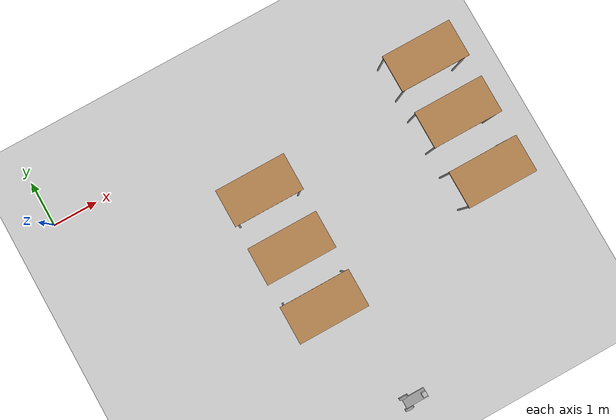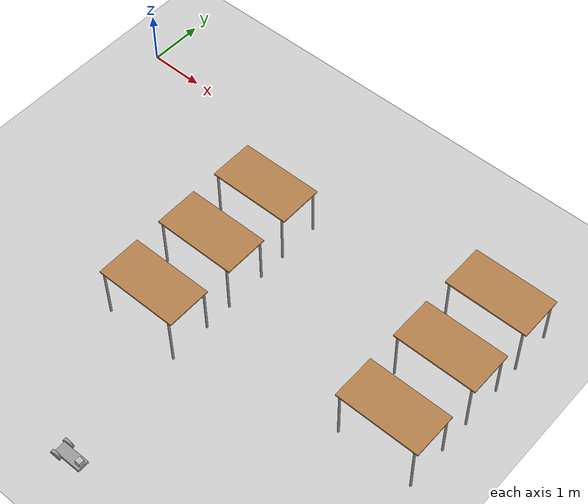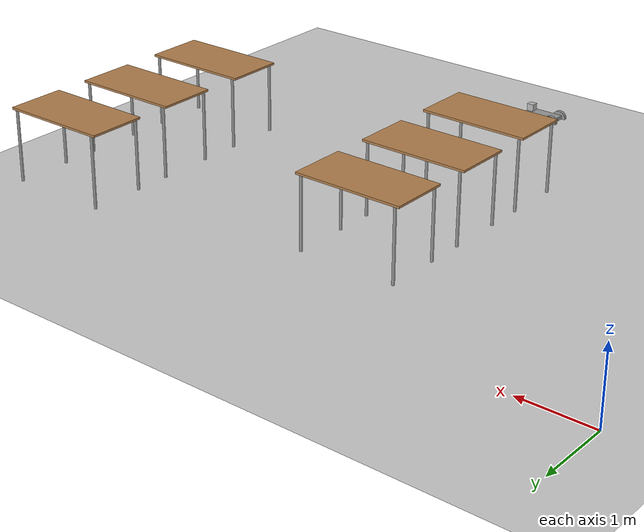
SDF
<sdf version="1.6">
 <world name="default">
  <model name="ground_plane">
   <static>1</static>
   <link name="link">
    <collision name="collision">
     <geometry><plane><normal>0 0 1</normal><size>100 100</size></plane></geometry>
     <surface>
      <contact><collide_bitmask>65535</collide_bitmask></contact>
      <friction><ode><mu>100</mu><mu2>50</mu2></ode></friction>
     </surface>
    </collision>
    <visual name="visual">
     <cast_shadows>0</cast_shadows>
     <geometry><plane><normal>0 0 1</normal><size>100 100</size></plane></geometry>
     <material>
      <script><uri>file://media/materials/scripts/gazebo.material</uri><name>Gazebo/Grey</name></script>
     </material>
    </visual>
   </link>
  </model>
  <model name="table">
   <static>1</static>
   <link name="link">
    <collision name="surface">
     <pose>0 0 1 0 -0 0</pose>
     <geometry><box><size>1.5 0.8 0.03</size></box></geometry>
     <surface><friction><ode><mu>0.6</mu><mu2>0.6</mu2></ode></friction></surface>
    </collision>
    <visual name="visual1">
     <pose>0 0 1 0 -0 0</pose>
     <geometry><box><size>1.5 0.8 0.03</size></box></geometry>
     <material>
      <script><uri>file://media/materials/scripts/gazebo.material</uri><name>Gazebo/Wood</name></script>
     </material>
    </visual>
    <collision name="front_left_leg">
     <pose>0.68 0.38 0.5 0 -0 0</pose>
     <geometry><cylinder><radius>0.02</radius><length>1</length></cylinder></geometry>
    </collision>
    <visual name="front_left_leg">
     <pose>0.68 0.38 0.5 0 -0 0</pose>
     <geometry><cylinder><radius>0.02</radius><length>1</length></cylinder></geometry>
     <material>
      <script><uri>file://media/materials/scripts/gazebo.material</uri><name>Gazebo/Grey</name></script>
     </material>
    </visual>
    <collision name="front_right_leg">
     <pose>0.68 -0.38 0.5 0 -0 0</pose>
     <geometry><cylinder><radius>0.02</radius><length>1</length></cylinder></geometry>
    </collision>
    <visual name="front_right_leg">
     <pose>0.68 -0.38 0.5 0 -0 0</pose>
     <geometry><cylinder><radius>0.02</radius><length>1</length></cylinder></geometry>
     <material>
      <script><uri>file://media/materials/scripts/gazebo.material</uri><name>Gazebo/Grey</name></script>
     </material>
    </visual>
    <collision name="back_right_leg">
     <pose>-0.68 -0.38 0.5 0 -0 0</pose>
     <geometry><cylinder><radius>0.02</radius><length>1</length></cylinder></geometry>
    </collision>
    <visual name="back_right_leg">
     <pose>-0.68 -0.38 0.5 0 -0 0</pose>
     <geometry><cylinder><radius>0.02</radius><length>1</length></cylinder></geometry>
     <material>
      <script><uri>file://media/materials/scripts/gazebo.material</uri><name>Gazebo/Grey</name></script>
     </material>
    </visual>
    <collision name="back_left_leg">
     <pose>-0.68 0.38 0.5 0 -0 0</pose>
     <geometry><cylinder><radius>0.02</radius><length>1</length></cylinder></geometry>
    </collision>
    <visual name="back_left_leg">
     <pose>-0.68 0.38 0.5 0 -0 0</pose>
     <geometry><cylinder><radius>0.02</radius><length>1</length></cylinder></geometry>
     <material>
      <script><uri>file://media/materials/scripts/gazebo.material</uri><name>Gazebo/Grey</name></script>
     </material>
    </visual>
   </link>
   <pose>4.02135 -1.52151 0 0 -0 0</pose>
  </model>
  <model name="table_clone">
   <static>1</static>
   <link name="link">
    <collision name="surface">
     <pose>0 0 1 0 -0 0</pose>
     <geometry><box><size>1.5 0.8 0.03</size></box></geometry>
     <surface><friction><ode><mu>0.6</mu><mu2>0.6</mu2></ode></friction></surface>
    </collision>
    <visual name="visual1">
     <pose>0 0 1 0 -0 0</pose>
     <geometry><box><size>1.5 0.8 0.03</size></box></geometry>
     <material>
      <script><uri>file://media/materials/scripts/gazebo.material</uri><name>Gazebo/Wood</name></script>
     </material>
    </visual>
    <collision name="front_left_leg">
     <pose>0.68 0.38 0.5 0 -0 0</pose>
     <geometry><cylinder><radius>0.02</radius><length>1</length></cylinder></geometry>
    </collision>
    <visual name="front_left_leg">
     <pose>0.68 0.38 0.5 0 -0 0</pose>
     <geometry><cylinder><radius>0.02</radius><length>1</length></cylinder></geometry>
     <material>
      <script><uri>file://media/materials/scripts/gazebo.material</uri><name>Gazebo/Grey</name></script>
     </material>
    </visual>
    <collision name="front_right_leg">
     <pose>0.68 -0.38 0.5 0 -0 0</pose>
     <geometry><cylinder><radius>0.02</radius><length>1</length></cylinder></geometry>
    </collision>
    <visual name="front_right_leg">
     <pose>0.68 -0.38 0.5 0 -0 0</pose>
     <geometry><cylinder><radius>0.02</radius><length>1</length></cylinder></geometry>
     <material>
      <script><uri>file://media/materials/scripts/gazebo.material</uri><name>Gazebo/Grey</name></script>
     </material>
    </visual>
    <collision name="back_right_leg">
     <pose>-0.68 -0.38 0.5 0 -0 0</pose>
     <geometry><cylinder><radius>0.02</radius><length>1</length></cylinder></geometry>
    </collision>
    <visual name="back_right_leg">
     <pose>-0.68 -0.38 0.5 0 -0 0</pose>
     <geometry><cylinder><radius>0.02</radius><length>1</length></cylinder></geometry>
     <material>
      <script><uri>file://media/materials/scripts/gazebo.material</uri><name>Gazebo/Grey</name></script>
     </material>
    </visual>
    <collision name="back_left_leg">
     <pose>-0.68 0.38 0.5 0 -0 0</pose>
     <geometry><cylinder><radius>0.02</radius><length>1</length></cylinder></geometry>
    </collision>
    <visual name="back_left_leg">
     <pose>-0.68 0.38 0.5 0 -0 0</pose>
     <geometry><cylinder><radius>0.02</radius><length>1</length></cylinder></geometry>
     <material>
      <script><uri>file://media/materials/scripts/gazebo.material</uri><name>Gazebo/Grey</name></script>
     </material>
    </visual>
   </link>
   <pose>4.02135 -2.7982 0 0 -0 0</pose>
  </model>
  <model name="table_clone_0">
   <static>1</static>
   <link name="link">
    <collision name="surface">
     <pose>0 0 1 0 -0 0</pose>
     <geometry><box><size>1.5 0.8 0.03</size></box></geometry>
     <surface><friction><ode><mu>0.6</mu><mu2>0.6</mu2></ode></friction></surface>
    </collision>
    <visual name="visual1">
     <pose>0 0 1 0 -0 0</pose>
     <geometry><box><size>1.5 0.8 0.03</size></box></geometry>
     <material>
      <script><uri>file://media/materials/scripts/gazebo.material</uri><name>Gazebo/Wood</name></script>
     </material>
    </visual>
    <collision name="front_left_leg">
     <pose>0.68 0.38 0.5 0 -0 0</pose>
     <geometry><cylinder><radius>0.02</radius><length>1</length></cylinder></geometry>
    </collision>
    <visual name="front_left_leg">
     <pose>0.68 0.38 0.5 0 -0 0</pose>
     <geometry><cylinder><radius>0.02</radius><length>1</length></cylinder></geometry>
     <material>
      <script><uri>file://media/materials/scripts/gazebo.material</uri><name>Gazebo/Grey</name></script>
     </material>
    </visual>
    <collision name="front_right_leg">
     <pose>0.68 -0.38 0.5 0 -0 0</pose>
     <geometry><cylinder><radius>0.02</radius><length>1</length></cylinder></geometry>
    </collision>
    <visual name="front_right_leg">
     <pose>0.68 -0.38 0.5 0 -0 0</pose>
     <geometry><cylinder><radius>0.02</radius><length>1</length></cylinder></geometry>
     <material>
      <script><uri>file://media/materials/scripts/gazebo.material</uri><name>Gazebo/Grey</name></script>
     </material>
    </visual>
    <collision name="back_right_leg">
     <pose>-0.68 -0.38 0.5 0 -0 0</pose>
     <geometry><cylinder><radius>0.02</radius><length>1</length></cylinder></geometry>
    </collision>
    <visual name="back_right_leg">
     <pose>-0.68 -0.38 0.5 0 -0 0</pose>
     <geometry><cylinder><radius>0.02</radius><length>1</length></cylinder></geometry>
     <material>
      <script><uri>file://media/materials/scripts/gazebo.material</uri><name>Gazebo/Grey</name></script>
     </material>
    </visual>
    <collision name="back_left_leg">
     <pose>-0.68 0.38 0.5 0 -0 0</pose>
     <geometry><cylinder><radius>0.02</radius><length>1</length></cylinder></geometry>
    </collision>
    <visual name="back_left_leg">
     <pose>-0.68 0.38 0.5 0 -0 0</pose>
     <geometry><cylinder><radius>0.02</radius><length>1</length></cylinder></geometry>
     <material>
      <script><uri>file://media/materials/scripts/gazebo.material</uri><name>Gazebo/Grey</name></script>
     </material>
    </visual>
   </link>
   <pose>4.02135 -4.0721 0 0 -0 0</pose>
  </model>
  <model name="table_clone_1">
   <static>1</static>
   <link name="link">
    <collision name="surface">
     <pose>0 0 1 0 -0 0</pose>
     <geometry><box><size>1.5 0.8 0.03</size></box></geometry>
     <surface><friction><ode><mu>0.6</mu><mu2>0.6</mu2></ode></friction></surface>
    </collision>
    <visual name="visual1">
     <pose>0 0 1 0 -0 0</pose>
     <geometry><box><size>1.5 0.8 0.03</size></box></geometry>
     <material>
      <script><uri>file://media/materials/scripts/gazebo.material</uri><name>Gazebo/Wood</name></script>
     </material>
    </visual>
    <collision name="front_left_leg">
     <pose>0.68 0.38 0.5 0 -0 0</pose>
     <geometry><cylinder><radius>0.02</radius><length>1</length></cylinder></geometry>
    </collision>
    <visual name="front_left_leg">
     <pose>0.68 0.38 0.5 0 -0 0</pose>
     <geometry><cylinder><radius>0.02</radius><length>1</length></cylinder></geometry>
     <material>
      <script><uri>file://media/materials/scripts/gazebo.material</uri><name>Gazebo/Grey</name></script>
     </material>
    </visual>
    <collision name="front_right_leg">
     <pose>0.68 -0.38 0.5 0 -0 0</pose>
     <geometry><cylinder><radius>0.02</radius><length>1</length></cylinder></geometry>
    </collision>
    <visual name="front_right_leg">
     <pose>0.68 -0.38 0.5 0 -0 0</pose>
     <geometry><cylinder><radius>0.02</radius><length>1</length></cylinder></geometry>
     <material>
      <script><uri>file://media/materials/scripts/gazebo.material</uri><name>Gazebo/Grey</name></script>
     </material>
    </visual>
    <collision name="back_right_leg">
     <pose>-0.68 -0.38 0.5 0 -0 0</pose>
     <geometry><cylinder><radius>0.02</radius><length>1</length></cylinder></geometry>
    </collision>
    <visual name="back_right_leg">
     <pose>-0.68 -0.38 0.5 0 -0 0</pose>
     <geometry><cylinder><radius>0.02</radius><length>1</length></cylinder></geometry>
     <material>
      <script><uri>file://media/materials/scripts/gazebo.material</uri><name>Gazebo/Grey</name></script>
     </material>
    </visual>
    <collision name="back_left_leg">
     <pose>-0.68 0.38 0.5 0 -0 0</pose>
     <geometry><cylinder><radius>0.02</radius><length>1</length></cylinder></geometry>
    </collision>
    <visual name="back_left_leg">
     <pose>-0.68 0.38 0.5 0 -0 0</pose>
     <geometry><cylinder><radius>0.02</radius><length>1</length></cylinder></geometry>
     <material>
      <script><uri>file://media/materials/scripts/gazebo.material</uri><name>Gazebo/Grey</name></script>
     </material>
    </visual>
   </link>
   <pose>8.1253 -0.794744 0 0 -0 0</pose>
  </model>
  <model name="table_clone_2">
   <static>1</static>
   <link name="link">
    <collision name="surface">
     <pose>0 0 1 0 -0 0</pose>
     <geometry><box><size>1.5 0.8 0.03</size></box></geometry>
     <surface><friction><ode><mu>0.6</mu><mu2>0.6</mu2></ode></friction></surface>
    </collision>
    <visual name="visual1">
     <pose>0 0 1 0 -0 0</pose>
     <geometry><box><size>1.5 0.8 0.03</size></box></geometry>
     <material>
      <script><uri>file://media/materials/scripts/gazebo.material</uri><name>Gazebo/Wood</name></script>
     </material>
    </visual>
    <collision name="front_left_leg">
     <pose>0.68 0.38 0.5 0 -0 0</pose>
     <geometry><cylinder><radius>0.02</radius><length>1</length></cylinder></geometry>
    </collision>
    <visual name="front_left_leg">
     <pose>0.68 0.38 0.5 0 -0 0</pose>
     <geometry><cylinder><radius>0.02</radius><length>1</length></cylinder></geometry>
     <material>
      <script><uri>file://media/materials/scripts/gazebo.material</uri><name>Gazebo/Grey</name></script>
     </material>
    </visual>
    <collision name="front_right_leg">
     <pose>0.68 -0.38 0.5 0 -0 0</pose>
     <geometry><cylinder><radius>0.02</radius><length>1</length></cylinder></geometry>
    </collision>
    <visual name="front_right_leg">
     <pose>0.68 -0.38 0.5 0 -0 0</pose>
     <geometry><cylinder><radius>0.02</radius><length>1</length></cylinder></geometry>
     <material>
      <script><uri>file://media/materials/scripts/gazebo.material</uri><name>Gazebo/Grey</name></script>
     </material>
    </visual>
    <collision name="back_right_leg">
     <pose>-0.68 -0.38 0.5 0 -0 0</pose>
     <geometry><cylinder><radius>0.02</radius><length>1</length></cylinder></geometry>
    </collision>
    <visual name="back_right_leg">
     <pose>-0.68 -0.38 0.5 0 -0 0</pose>
     <geometry><cylinder><radius>0.02</radius><length>1</length></cylinder></geometry>
     <material>
      <script><uri>file://media/materials/scripts/gazebo.material</uri><name>Gazebo/Grey</name></script>
     </material>
    </visual>
    <collision name="back_left_leg">
     <pose>-0.68 0.38 0.5 0 -0 0</pose>
     <geometry><cylinder><radius>0.02</radius><length>1</length></cylinder></geometry>
    </collision>
    <visual name="back_left_leg">
     <pose>-0.68 0.38 0.5 0 -0 0</pose>
     <geometry><cylinder><radius>0.02</radius><length>1</length></cylinder></geometry>
     <material>
      <script><uri>file://media/materials/scripts/gazebo.material</uri><name>Gazebo/Grey</name></script>
     </material>
    </visual>
   </link>
   <pose>8.1253 -2.05917 0 0 -0 0</pose>
  </model>
  <model name="table_clone_3">
   <static>1</static>
   <link name="link">
    <collision name="surface">
     <pose>0 0 1 0 -0 0</pose>
     <geometry><box><size>1.5 0.8 0.03</size></box></geometry>
     <surface><friction><ode><mu>0.6</mu><mu2>0.6</mu2></ode></friction></surface>
    </collision>
    <visual name="visual1">
     <pose>0 0 1 0 -0 0</pose>
     <geometry><box><size>1.5 0.8 0.03</size></box></geometry>
     <material>
      <script><uri>file://media/materials/scripts/gazebo.material</uri><name>Gazebo/Wood</name></script>
     </material>
    </visual>
    <collision name="front_left_leg">
     <pose>0.68 0.38 0.5 0 -0 0</pose>
     <geometry><cylinder><radius>0.02</radius><length>1</length></cylinder></geometry>
    </collision>
    <visual name="front_left_leg">
     <pose>0.68 0.38 0.5 0 -0 0</pose>
     <geometry><cylinder><radius>0.02</radius><length>1</length></cylinder></geometry>
     <material>
      <script><uri>file://media/materials/scripts/gazebo.material</uri><name>Gazebo/Grey</name></script>
     </material>
    </visual>
    <collision name="front_right_leg">
     <pose>0.68 -0.38 0.5 0 -0 0</pose>
     <geometry><cylinder><radius>0.02</radius><length>1</length></cylinder></geometry>
    </collision>
    <visual name="front_right_leg">
     <pose>0.68 -0.38 0.5 0 -0 0</pose>
     <geometry><cylinder><radius>0.02</radius><length>1</length></cylinder></geometry>
     <material>
      <script><uri>file://media/materials/scripts/gazebo.material</uri><name>Gazebo/Grey</name></script>
     </material>
    </visual>
    <collision name="back_right_leg">
     <pose>-0.68 -0.38 0.5 0 -0 0</pose>
     <geometry><cylinder><radius>0.02</radius><length>1</length></cylinder></geometry>
    </collision>
    <visual name="back_right_leg">
     <pose>-0.68 -0.38 0.5 0 -0 0</pose>
     <geometry><cylinder><radius>0.02</radius><length>1</length></cylinder></geometry>
     <material>
      <script><uri>file://media/materials/scripts/gazebo.material</uri><name>Gazebo/Grey</name></script>
     </material>
    </visual>
    <collision name="back_left_leg">
     <pose>-0.68 0.38 0.5 0 -0 0</pose>
     <geometry><cylinder><radius>0.02</radius><length>1</length></cylinder></geometry>
    </collision>
    <visual name="back_left_leg">
     <pose>-0.68 0.38 0.5 0 -0 0</pose>
     <geometry><cylinder><radius>0.02</radius><length>1</length></cylinder></geometry>
     <material>
      <script><uri>file://media/materials/scripts/gazebo.material</uri><name>Gazebo/Grey</name></script>
     </material>
    </visual>
   </link>
   <pose>8.1253 -3.39167 0 0 -0 0</pose>
  </model>
  <model name="TriRobot_clone_0">
   <link name="link_2">
    <pose>0.001674 0.000657 -0.001317 0 -0 0</pose>
    <inertial>
     <mass>1</mass>
     <inertia>
      <ixx>0.166667</ixx>
      <ixy>0</ixy>
      <ixz>0</ixz>
      <iyy>0.166667</iyy>
      <iyz>0</iyz>
      <izz>0.166667</izz>
     </inertia>
    </inertial>
    <visual name="visual">
     <geometry><box><size>0.5 0.2 0.1</size></box></geometry>
     <material>
      <lighting>1</lighting>
      <script><uri>file://media/materials/scripts/gazebo.material</uri><name>Gazebo/Grey</name></script>
      <shader type="pixel"><normal_map>__default__</normal_map></shader>
      <ambient>0.3 0.3 0.3 1</ambient>
      <diffuse>0.7 0.7 0.7 1</diffuse>
      <specular>0.01 0.01 0.01 1</specular>
      <emissive>0 0 0 1</emissive>
     </material>
    </visual>
    <collision name="collision">
     <geometry><box><size>0.5 0.2 0.1</size></box></geometry>
     <surface>
      <friction>
       <ode><mu>1</mu><mu2>1</mu2><fdir1>0 0 0</fdir1><slip1>0</slip1><slip2>0</slip2></ode>
       <torsional>
        <coefficient>1</coefficient>
        <patch_radius>0</patch_radius>
        <surface_radius>0</surface_radius>
        <use_patch_radius>1</use_patch_radius>
        <ode><slip>0</slip></ode>
       </torsional>
      </friction>
      <bounce><restitution_coefficient>0</restitution_coefficient><threshold>1e+06</threshold></bounce>
      <contact>
       <collide_without_contact>0</collide_without_contact>
       <collide_without_contact_bitmask>1</collide_without_contact_bitmask>
       <collide_bitmask>1</collide_bitmask>
       <ode>
        <soft_cfm>0</soft_cfm>
        <soft_erp>0.2</soft_erp>
        <kp>1e+13</kp>
        <kd>1</kd>
        <max_vel>0.01</max_vel>
        <min_depth>0</min_depth>
       </ode>
       <bullet>
        <split_impulse>1</split_impulse>
        <split_impulse_penetration_threshold>-0.01</split_impulse_penetration_threshold>
        <soft_cfm>0</soft_cfm>
        <soft_erp>0.2</soft_erp>
        <kp>1e+13</kp>
        <kd>1</kd>
       </bullet>
      </contact>
     </surface>
    </collision>
   </link>
   <link name="link_3">
    <pose>-0.198326 0.125657 -0.001317 1.5707 -0 0</pose>
    <inertial>
     <mass>1</mass>
     <inertia><ixx>0.145833</ixx><ixy>0</ixy><ixz>0</ixz><iyy>0.145833</iyy><iyz>0</iyz><izz>0.125</izz></inertia>
    </inertial>
    <visual name="visual">
     <geometry><cylinder><radius>0.1</radius><length>0.05</length></cylinder></geometry>
     <material>
      <lighting>1</lighting>
      <script><uri>file://media/materials/scripts/gazebo.material</uri><name>Gazebo/Grey</name></script>
      <shader type="pixel"><normal_map>__default__</normal_map></shader>
      <ambient>0.3 0.3 0.3 1</ambient>
      <diffuse>0.7 0.7 0.7 1</diffuse>
      <specular>0.01 0.01 0.01 1</specular>
      <emissive>0 0 0 1</emissive>
     </material>
    </visual>
    <collision name="collision">
     <geometry><cylinder><radius>0.1</radius><length>0.05</length></cylinder></geometry>
     <surface>
      <friction>
       <ode><mu>1</mu><mu2>1</mu2><fdir1>0 0 0</fdir1><slip1>0</slip1><slip2>0</slip2></ode>
       <torsional>
        <coefficient>1</coefficient>
        <patch_radius>0</patch_radius>
        <surface_radius>0</surface_radius>
        <use_patch_radius>1</use_patch_radius>
        <ode><slip>0</slip></ode>
       </torsional>
      </friction>
      <bounce><restitution_coefficient>0</restitution_coefficient><threshold>1e+06</threshold></bounce>
      <contact>
       <collide_without_contact>0</collide_without_contact>
       <collide_without_contact_bitmask>1</collide_without_contact_bitmask>
       <collide_bitmask>1</collide_bitmask>
       <ode>
        <soft_cfm>0</soft_cfm>
        <soft_erp>0.2</soft_erp>
        <kp>1e+13</kp>
        <kd>1</kd>
        <max_vel>0.01</max_vel>
        <min_depth>0</min_depth>
       </ode>
       <bullet>
        <split_impulse>1</split_impulse>
        <split_impulse_penetration_threshold>-0.01</split_impulse_penetration_threshold>
        <soft_cfm>0</soft_cfm>
        <soft_erp>0.2</soft_erp>
        <kp>1e+13</kp>
        <kd>1</kd>
       </bullet>
      </contact>
     </surface>
    </collision>
   </link>
   <link name="link_3_clone">
    <pose>-0.198326 -0.124343 -0.001317 1.5707 -0 0</pose>
    <inertial>
     <mass>1</mass>
     <inertia><ixx>0.145833</ixx><ixy>0</ixy><ixz>0</ixz><iyy>0.145833</iyy><iyz>0</iyz><izz>0.125</izz></inertia>
    </inertial>
    <visual name="visual">
     <geometry><cylinder><radius>0.1</radius><length>0.05</length></cylinder></geometry>
     <material>
      <lighting>1</lighting>
      <script><uri>file://media/materials/scripts/gazebo.material</uri><name>Gazebo/Grey</name></script>
      <shader type="pixel"><normal_map>__default__</normal_map></shader>
      <ambient>0.3 0.3 0.3 1</ambient>
      <diffuse>0.7 0.7 0.7 1</diffuse>
      <specular>0.01 0.01 0.01 1</specular>
      <emissive>0 0 0 1</emissive>
     </material>
    </visual>
    <collision name="collision">
     <geometry><cylinder><radius>0.1</radius><length>0.05</length></cylinder></geometry>
     <surface>
      <friction>
       <ode><mu>1</mu><mu2>1</mu2><fdir1>0 0 0</fdir1><slip1>0</slip1><slip2>0</slip2></ode>
       <torsional>
        <coefficient>1</coefficient>
        <patch_radius>0</patch_radius>
        <surface_radius>0</surface_radius>
        <use_patch_radius>1</use_patch_radius>
        <ode><slip>0</slip></ode>
       </torsional>
      </friction>
      <bounce><restitution_coefficient>0</restitution_coefficient><threshold>1e+06</threshold></bounce>
      <contact>
       <collide_without_contact>0</collide_without_contact>
       <collide_without_contact_bitmask>1</collide_without_contact_bitmask>
       <collide_bitmask>1</collide_bitmask>
       <ode>
        <soft_cfm>0</soft_cfm>
        <soft_erp>0.2</soft_erp>
        <kp>1e+13</kp>
        <kd>1</kd>
        <max_vel>0.01</max_vel>
        <min_depth>0</min_depth>
       </ode>
       <bullet>
        <split_impulse>1</split_impulse>
        <split_impulse_penetration_threshold>-0.01</split_impulse_penetration_threshold>
        <soft_cfm>0</soft_cfm>
        <soft_erp>0.2</soft_erp>
        <kp>1e+13</kp>
        <kd>1</kd>
       </bullet>
      </contact>
     </surface>
    </collision>
   </link>
   <link name="link_5">
    <pose>0.201674 0.000657 -0.051317 0 -0 0</pose>
    <inertial>
     <mass>1</mass>
     <inertia><ixx>0.1</ixx><ixy>0</ixy><ixz>0</ixz><iyy>0.1</iyy><iyz>0</iyz><izz>0.1</izz></inertia>
    </inertial>
    <visual name="visual">
     <geometry><sphere><radius>0.05</radius></sphere></geometry>
     <material>
      <lighting>1</lighting>
      <script><uri>file://media/materials/scripts/gazebo.material</uri><name>Gazebo/Grey</name></script>
      <shader type="pixel"><normal_map>__default__</normal_map></shader>
      <ambient>0.3 0.3 0.3 1</ambient>
      <diffuse>0.7 0.7 0.7 1</diffuse>
      <specular>0.01 0.01 0.01 1</specular>
      <emissive>0 0 0 1</emissive>
     </material>
    </visual>
    <collision name="collision">
     <geometry><sphere><radius>0.05</radius></sphere></geometry>
     <surface>
      <friction>
       <ode><mu>1</mu><mu2>1</mu2><fdir1>0 0 0</fdir1><slip1>0</slip1><slip2>0</slip2></ode>
       <torsional>
        <coefficient>1</coefficient>
        <patch_radius>0</patch_radius>
        <surface_radius>0</surface_radius>
        <use_patch_radius>1</use_patch_radius>
        <ode><slip>0</slip></ode>
       </torsional>
      </friction>
      <bounce><restitution_coefficient>0</restitution_coefficient><threshold>1e+06</threshold></bounce>
      <contact>
       <collide_without_contact>0</collide_without_contact>
       <collide_without_contact_bitmask>1</collide_without_contact_bitmask>
       <collide_bitmask>1</collide_bitmask>
       <ode>
        <soft_cfm>0</soft_cfm>
        <soft_erp>0.2</soft_erp>
        <kp>1e+13</kp>
        <kd>1</kd>
        <max_vel>0.01</max_vel>
        <min_depth>0</min_depth>
       </ode>
       <bullet>
        <split_impulse>1</split_impulse>
        <split_impulse_penetration_threshold>-0.01</split_impulse_penetration_threshold>
        <soft_cfm>0</soft_cfm>
        <soft_erp>0.2</soft_erp>
        <kp>1e+13</kp>
        <kd>1</kd>
       </bullet>
      </contact>
     </surface>
    </collision>
   </link>
   <model name="depth_camera">
    <link name="link">
     <pose>0 0 0.05 0 -0 0</pose>
     <inertial>
      <mass>0.1</mass>
      <inertia>
       <ixx>0.000166667</ixx>
       <iyy>0.000166667</iyy>
       <izz>0.000166667</izz>
       <ixy>0</ixy>
       <ixz>0</ixz>
       <iyz>0</iyz>
      </inertia>
     </inertial>
     <collision name="collision"><geometry><box><size>0.1 0.1 0.1</size></box></geometry></collision>
     <visual name="visual"><geometry><box><size>0.1 0.1 0.1</size></box></geometry></visual>
     <sensor name="camera" type="depth">
      <camera name="__default__">
       <horizontal_fov>1.047</horizontal_fov>
       <image><width>320</width><height>240</height></image>
       <clip><near>0.1</near><far>100</far></clip>
      </camera>
      <always_on>1</always_on>
      <update_rate>30</update_rate>
      <visualize>1</visualize>
     </sensor>
    </link>
    <pose>0.193306 -0.00263 0.055267 0 -0 0</pose>
   </model>
   <joint name="link_2_JOINT_10" type="revolute">
    <parent>link_2</parent>
    <child>link_3</child>
    <axis>
     <xyz>0 0 1</xyz>
     <use_parent_model_frame>0</use_parent_model_frame>
     <limit>
      <lower>-1.79769e+308</lower>
      <upper>1.79769e+308</upper>
      <effort>-1</effort>
      <velocity>-1</velocity>
     </limit>
     <dynamics>
      <spring_reference>0</spring_reference>
      <spring_stiffness>0</spring_stiffness>
      <damping>0</damping>
      <friction>0</friction>
     </dynamics>
    </axis>
    <physics>
     <ode><limit><cfm>0</cfm><erp>0.2</erp></limit><suspension><cfm>0</cfm><erp>0.2</erp></suspension></ode>
    </physics>
   </joint>
   <joint name="link_2_JOINT_11" type="revolute">
    <parent>link_2</parent>
    <child>link_3_clone</child>
    <pose>0 0 0 0 -0.01 0</pose>
    <axis>
     <xyz>0 0 -1</xyz>
     <use_parent_model_frame>0</use_parent_model_frame>
     <limit>
      <lower>-1.79769e+308</lower>
      <upper>1.79769e+308</upper>
      <effort>-1</effort>
      <velocity>-1</velocity>
     </limit>
     <dynamics>
      <spring_reference>0</spring_reference>
      <spring_stiffness>0</spring_stiffness>
      <damping>0</damping>
      <friction>0</friction>
     </dynamics>
    </axis>
    <physics>
     <ode><limit><cfm>0</cfm><erp>0.2</erp></limit><suspension><cfm>0</cfm><erp>0.2</erp></suspension></ode>
    </physics>
   </joint>
   <joint name="link_2_JOINT_12" type="ball">
    <parent>link_2</parent>
    <child>link_5</child>
    <physics>
     <ode><limit><cfm>0</cfm><erp>0.2</erp></limit><suspension><cfm>0</cfm><erp>0.2</erp></suspension></ode>
    </physics>
   </joint>
   <joint name="link_2_JOINT_14" type="fixed">
    <parent>link_2</parent>
    <child>depth_camera::link</child>
    <physics>
     <ode><limit><cfm>0</cfm><erp>0.2</erp></limit><suspension><cfm>0</cfm><erp>0.2</erp></suspension></ode>
    </physics>
   </joint>
   <static>0</static>
   <plugin name="follow_sensor" filename="libFollowerPlugin.so"/>
   <pose>4.75993 -6.65476 0 0 -0 0</pose>
  </model>
 </world>
</sdf>
